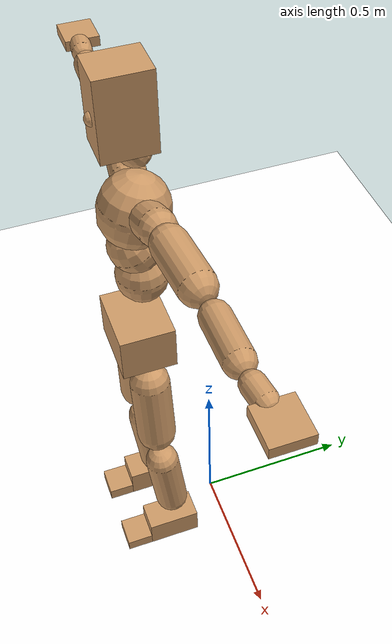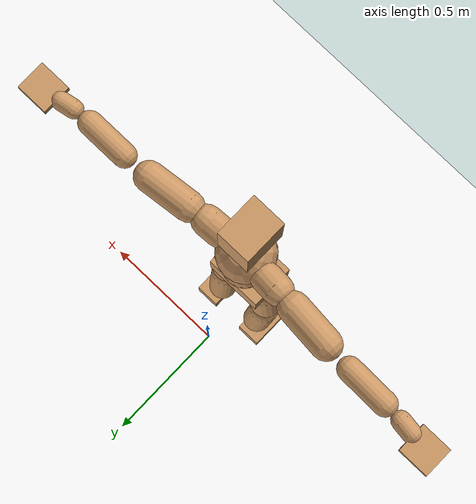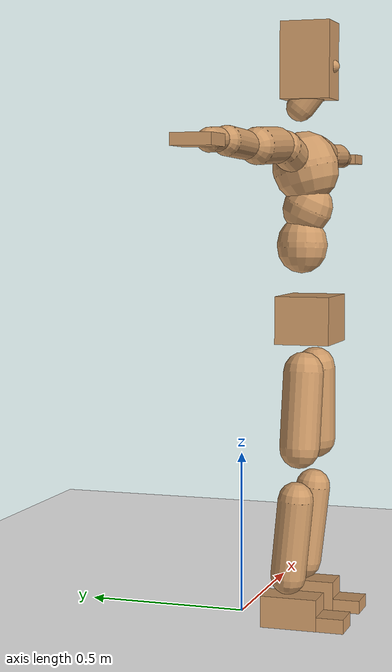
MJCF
<mujoco model="humanoid">
  <option integrator="implicitfast" />

  <visual>
    <global offwidth="1280" offheight="960" />
    <headlight active="1" ambient="0.34 0.34 0.34" diffuse="0.5 0.5 0.5" />
  </visual>

  <default>
    <joint damping="2" stiffness="2" armature="0.01" limited="true" solimplimit="0 .99 .01" />
    <geom condim="1" friction="0.7 0.005 0.0001" solimp=".99 .99 .003" solref="0.015 1" margin="0.001" rgba="0.8 0.6 .4 1" />
    <default class="smplcontact">
      <geom condim="3" friction="1. 0.005 0.0001" solref="0.015 1" solimp="0.98 0.98 0.001" priority="1" />
    </default>
    <default class="stiff_medium">
      <joint stiffness="10" />
    </default>
    <default class="stiff_medium_higher">
      <joint stiffness="50" />
    </default>
    <default class="stiff_high">
      <joint stiffness="100" />
    </default>
  </default>

  <asset>
    <texture type="skybox" builtin="gradient" rgb1="0.99 0.99 0.99" rgb2="0.608 0.828 0.892" width="100" />
    <texture builtin="flat" height="1278" mark="cross" markrgb="1 1 1" name="texgeom" random="0.01" rgb1="0.8 0.6 0.4" rgb2="0.8 0.6 0.4" type="cube" width="127" />
    <texture name="texplane" type="2d" builtin="checker" markrgb="1 1 1" rgb1="0.756 0.772 0.76" rgb2="0.6 0.6 0.6" width="100" height="100" />
    <material name="MatPlane" reflectance="0.5" texture="texplane" texrepeat="1 1" texuniform="true" />
    <material name="geom" texture="texgeom" texuniform="true" />
  </asset>

  <worldbody>
    <light name="tracking_light" pos="0 0 7" dir="0 0 -1" directional="true" cutoff="100" exponent="1" diffuse="1 1 1" specular="0.1 0.1 0.1" mode="trackcom" />
    <camera name="back" pos="0 3 2.4" xyaxes="-1 0 0 0 -1 2" mode="trackcom" />
    <camera name="side" pos="-3 0 2.4" xyaxes="0 -1 0 1 0 2" mode="trackcom" />
    <camera name="front_side" pos="-2.8 -2.8 0.8" xyaxes="0.5 -0.5 0 0.1 0.1 1" mode="trackcom" />
    <geom condim="3" name="floor" pos="0 0 0" rgba="1 1 1 1" size="100 100 .2" type="plane" material="MatPlane" />
    <body name="Pelvis" pos="-0.0018 -0.2233 0.9367" euler="90 0 0">
      <site name="Pelvis" size="0.01" />
      <freejoint name="Pelvis" />
      <geom type="box" pos="-0.0000 -0.0121 -0.0055" size="0.1069 0.0722 0.083" quat="1.0000 0.0000 0.0000 0.0000" density="3165.830099" name="Pelvis" />
      <body name="L_Hip" pos="0.0695 -0.0914 -0.0068">
        <joint name="L_Hip_x" type="hinge" pos="0 0 0" axis="1 0 0" stiffness="10.0" range="-160.0 22.92" class="stiff_medium" damping="15.0" armature="0.010000000000000002"/>
        <joint name="L_Hip_y" type="hinge" pos="0 0 0" axis="0 1 0" stiffness="10.0" range="-70.0 70.0" class="stiff_medium" damping="10.000000000000002" armature="0.010000000000000007"/>
        <joint name="L_Hip_z" type="hinge" pos="0 0 0" axis="0 0 1" stiffness="10.0" range="-28.65 90.0" class="stiff_medium" damping="9.999999999999998" armature="0.009999999999999998"/>
        <geom type="capsule" density="2040.816327" fromto="0.0069 -0.075 -0.0009 0.0274 -0.3002 -0.0036" size="0.0615" name="L_Hip" />
        <body name="L_Knee" pos="0.0343 -0.3752 -0.0045">
          <joint name="L_Knee_x" type="hinge" pos="0 0 0" axis="1 0 0" range="-5.16 171.89" damping="8.000000000000004" armature="0.010000000000000009" stiffness="2.0"/>
          <joint name="L_Knee_y" type="hinge" pos="0 0 0" axis="0 1 0" range="-4.58 6.88" damping="8.000000000000002" armature="0.010000000000000005" stiffness="2.0"/>
          <joint name="L_Knee_z" type="hinge" pos="0 0 0" axis="0 0 1" range="-6.88 4.58" damping="7.999999999999998" armature="0.009999999999999995" stiffness="2.0"/>
          <geom type="capsule" density="1234.567901" fromto="-0.0027 -0.0796 -0.0087 -0.0109 -0.3184 -0.035" size="0.0541" name="L_Knee" />
          <body name="L_Ankle" pos="-0.0136 -0.398 -0.0437">
            <joint name="L_Ankle_x" type="hinge" pos="0 0 0" axis="1 0 0" range="-45.84 45.84" class="stiff_medium" damping="6.000000000000025" armature="0.010000000000000085" stiffness="10.0"/>
            <joint name="L_Ankle_y" type="hinge" pos="0 0 0" axis="0 1 0" range="-74.48 22.92" class="stiff_medium" damping="3.0" armature="0.010000000000000002" stiffness="10.0"/>
            <joint name="L_Ankle_z" type="hinge" pos="0 0 0" axis="0 0 1" range="-4.58 4.58" class="stiff_medium" damping="5.999999999999938" armature="0.009999999999999796" stiffness="10.0"/>
            <geom type="box" pos="0.0233 -0.0239 0.0242" size="0.0483 0.0464 0.085" quat="1.0000 0.0000 0.0000 0.0000" density="449.071558" name="L_Ankle" class="smplcontact" />
            <body name="L_Toe" pos="0.0264 -0.0558 0.1193">
              <joint name="L_Toe_x" type="hinge" pos="0 0 0" axis="1 0 0" range="-91.67 22.92" armature="0.009999999999998375" damping="1.9999999999998375" stiffness="2.0"/>
              <joint name="L_Toe_y" type="hinge" pos="0 0 0" axis="0 1 0" range="-4.58 4.58" armature="0.009999999999999976" damping="1.9999999999999976" stiffness="2.0"/>
              <joint name="L_Toe_z" type="hinge" pos="0 0 0" axis="0 0 1" range="-4.58 4.58" armature="0.009999999999998234" damping="1.9999999999998235" stiffness="2.0"/>
              <geom type="box" pos="-0.003 0.0055 0.0248" size="0.0478 0.02 0.0496" quat="1.0000 0.0000 0.0000 0.0000" density="423.206892" name="L_Toe" class="smplcontact" />
            </body>
          </body>
        </body>
      </body>
      <body name="R_Hip" pos="-0.0677 -0.0905 -0.0043">
        <joint name="R_Hip_x" type="hinge" pos="0 0 0" axis="1 0 0" stiffness="10.0" range="-160.0 22.92" class="stiff_medium" damping="15.0" armature="0.010000000000000002"/>
        <joint name="R_Hip_y" type="hinge" pos="0 0 0" axis="0 1 0" stiffness="10.0" range="-70.0 70.0" class="stiff_medium" damping="10.000000000000002" armature="0.010000000000000007"/>
        <joint name="R_Hip_z" type="hinge" pos="0 0 0" axis="0 0 1" stiffness="10.0" range="-90.0 28.65" class="stiff_medium" damping="9.999999999999998" armature="0.009999999999999998"/>
        <geom type="capsule" density="2040.816327" fromto="-0.0077 -0.0765 -0.0018 -0.0306 -0.3061 -0.0071" size="0.0606" name="R_Hip" />
        <body name="R_Knee" pos="-0.0383 -0.3826 -0.0089">
          <joint name="R_Knee_x" type="hinge" pos="0 0 0" axis="1 0 0" range="-5.16 171.89" damping="8.000000000000004" armature="0.010000000000000009" stiffness="2.0"/>
          <joint name="R_Knee_y" type="hinge" pos="0 0 0" axis="0 1 0" range="-6.88 4.58" damping="8.000000000000002" armature="0.010000000000000005" stiffness="2.0"/>
          <joint name="R_Knee_z" type="hinge" pos="0 0 0" axis="0 0 1" range="-4.58 6.88" damping="7.999999999999998" armature="0.009999999999999995" stiffness="2.0"/>
          <geom type="capsule" density="1234.567901" fromto="0.0032 -0.0797 -0.0085 0.0126 -0.3187 -0.0338" size="0.0541" name="R_Knee" />
          <body name="R_Ankle" pos="0.0158 -0.3984 -0.0423">
            <joint name="R_Ankle_x" type="hinge" pos="0 0 0" axis="1 0 0" range="-45.84 45.84" class="stiff_medium" damping="6.000000000000025" armature="0.010000000000000085" stiffness="10.0"/>
            <joint name="R_Ankle_y" type="hinge" pos="0 0 0" axis="0 1 0" range="-22.92 74.48" class="stiff_medium" damping="3.0" armature="0.010000000000000002" stiffness="10.0"/>
            <joint name="R_Ankle_z" type="hinge" pos="0 0 0" axis="0 0 1" range="-4.58 4.58" class="stiff_medium" damping="5.999999999999938" armature="0.009999999999999796" stiffness="10.0"/>
            <geom type="box" pos="-0.0212 -0.0174 0.0256" size="0.0483 0.0478 0.0865" quat="1.0000 0.0000 0.0000 0.0000" density="434.700981" name="R_Ankle" class="smplcontact" />
            <body name="R_Toe" pos="-0.0254 -0.0481 0.1233">
              <joint name="R_Toe_x" type="hinge" pos="0 0 0" axis="1 0 0" range="-91.67 22.92" armature="0.009999999999998375" damping="1.9999999999998375" stiffness="2.0"/>
              <joint name="R_Toe_y" type="hinge" pos="0 0 0" axis="0 1 0" range="-4.58 4.58" armature="0.009999999999999976" damping="1.9999999999999976" stiffness="2.0"/>
              <joint name="R_Toe_z" type="hinge" pos="0 0 0" axis="0 0 1" range="-4.58 4.58" armature="0.009999999999998234" damping="1.9999999999998235" stiffness="2.0"/>
              <geom type="box" pos="0.0042 0.0045 0.0227" size="0.0479 0.0216 0.0493" quat="1.0000 0.0000 0.0000 0.0000" density="407.384095" name="R_Toe" class="smplcontact" />
            </body>
          </body>
        </body>
      </body>
      <body name="Torso" pos="-0.003 0.1308 -0.03204">
        <joint name="Torso_x" type="hinge" pos="0 0 0" axis="1 0 0" range="-25.78 57.3" class="stiff_medium" damping="18.677640483112885" armature="0.013257802659777503" stiffness="11.69472340909091"/>
        <joint name="Torso_y" type="hinge" pos="0 0 0" axis="0 1 0" range="-57.3 57.3" class="stiff_high" damping="21.694237838291862" armature="0.009993785849278099" stiffness="117.73315"/>
        <joint name="Torso_z" type="hinge" pos="0 0 0" axis="0 0 1" range="-34.38 34.38" class="stiff_high" damping="24.222757337160637" armature="0.012215127832808582" stiffness="120.0851069767442"/>
        <geom type="capsule" density="2040.816327" fromto="0.003 0.07296 0.0006 0.0036 0.08916 0.00072" size="0.0769" name="Torso" />
        <body name="Spine" pos="0.0066 0.16224 0.00132">
          <joint name="Spine_x" type="hinge" pos="0 0 0" axis="1 0 0" stiffness="11.510355454545456" range="-25.78 57.3" class="stiff_medium" damping="17.96437678078733" armature="0.012461004620154117"/>
          <joint name="Spine_y" type="hinge" pos="0 0 0" axis="0 1 0" stiffness="11.582415909090908" range="-57.3 57.3" class="stiff_high" damping="8.605196081191497" armature="0.009989469189890816"/>
          <joint name="Spine_z" type="hinge" pos="0 0 0" axis="0 0 1" stiffness="22.749950000000002" range="-34.38 34.38" class="stiff_high" damping="13.529771738987945" armature="0.011175526595120529"/>
          <geom type="capsule" density="2040.816327" fromto="0.00084 0.02856 0.01368 0.00096 0.03492 0.0168" size="0.0755" name="Spine" />
          <body name="Chest" pos="0.0018 0.06348 0.03048">
            <joint name="Chest_x" type="hinge" pos="0 0 0" axis="1 0 0" stiffness="11.11315909090909" range="-25.78 57.3" class="stiff_medium" damping="17.325710969510986" armature="0.012004997684615373"/>
            <joint name="Chest_y" type="hinge" pos="0 0 0" axis="0 1 0" stiffness="10.695330930232558" range="-57.3 57.3" class="stiff_high" damping="8.281971398403202" armature="0.01002058905005483"/>
            <joint name="Chest_z" type="hinge" pos="0 0 0" axis="0 0 1" stiffness="22.37315363636364" range="-34.38 34.38" class="stiff_high" damping="13.165722005903188" armature="0.010760430829163474"/>
            <geom type="capsule" density="2040.816327" fromto="-0.00108 0.08184 -0.02076 -0.0012 0.09996 -0.02544" size="0.1002" name="Chest" />
            <body name="Neck" pos="-0.00336 0.25668 -0.05148">
              <joint name="Neck_x" type="hinge" pos="0 0 0" axis="1 0 0" range="-28.65 57.3" class="stiff_medium_higher" damping="10.15124837290633" armature="0.010062474925402192" stiffness="51.20402500000001"/>
              <joint name="Neck_y" type="hinge" pos="0 0 0" axis="0 1 0" range="-40.11 40.11" class="stiff_medium_higher" damping="10.179132196448924" armature="0.010170205863853494" stiffness="50.94033181818182"/>
              <joint name="Neck_z" type="hinge" pos="0 0 0" axis="0 0 1" range="-40.11 40.11" class="stiff_medium_higher" damping="10.06821274595959" armature="0.01004356484394618" stiffness="50.464605681818185"/>
              <geom type="capsule" density="1000" fromto="0.0012 0.0156 0.01236 0.00492 0.0624 0.04932" size="0.0436" name="Neck" />
              <body name="Head" pos="0.0052 0.065 0.0513">
                <joint name="Head_x" type="hinge" pos="0 0 0" axis="1 0 0" range="-28.65 57.3" class="stiff_medium_higher" damping="1.9999999999999996" armature="0.009999999999999995" stiffness="50.0"/>
                <joint name="Head_y" type="hinge" pos="0 0 0" axis="0 1 0" range="-40.11 40.11" class="stiff_medium_higher" damping="2.0" armature="0.010000000000000002" stiffness="50.0"/>
                <joint name="Head_z" type="hinge" pos="0 0 0" axis="0 0 1" range="-40.11 40.11" class="stiff_medium_higher" damping="1.999999999999997" armature="0.009999999999999969" stiffness="50.0"/>
                <geom type="box" pos="-0.0042 0.0876 -0.0116" size="0.0606 0.1154 0.076" quat="1.0000 0.0000 0.0000 0.0000" density="1018.069894" name="Head" />
                <geom type="capsule" name="nose" size="0.02 0.01" pos="0 0.07 0.05" quat="1 0 0 0" mass="0" contype="0" conaffinity="0" />
              </body>
            </body>
            <body name="L_Thorax" pos="0.0788 0.1217 -0.0341">
              <joint name="L_Thorax_x" type="hinge" pos="0 0 0" axis="1 0 0" range="-10.89 4.58" class="stiff_medium_higher" damping="19.999999999999922" armature="0.009999999999999922" stiffness="50.0"/>
              <joint name="L_Thorax_y" type="hinge" pos="0 0 0" axis="0 1 0" range="-28.65 17.19" class="stiff_medium_higher" damping="20.000000000000004" armature="0.010000000000000005" stiffness="50.0"/>
              <joint name="L_Thorax_z" type="hinge" pos="0 0 0" axis="0 0 1" range="-31.51 40.11" class="stiff_medium_higher" damping="20.0" armature="0.010000000000000002" stiffness="50.0"/>
              <geom type="capsule" density="1000" fromto="0.0182 0.0061 -0.0018 0.0728 0.0244 -0.0071" size="0.0521" name="L_Thorax" />
              <body name="L_Shoulder" pos="0.091 0.0305 -0.0089">
                <joint name="L_Shoulder_x" type="hinge" pos="0 0 0" axis="1 0 0" range="-97.4 97.4" class="stiff_medium" damping="6.000000000000021" armature="0.010000000000000071" stiffness="10.0"/>
                <joint name="L_Shoulder_y" type="hinge" pos="0 0 0" axis="0 1 0" range="-108.86 80.21" class="stiff_medium" damping="6.000000000000002" armature="0.010000000000000005" stiffness="10.0"/>
                <joint name="L_Shoulder_z" type="hinge" pos="0 0 0" axis="0 0 1" range="-97.4 85.94" class="stiff_medium" damping="6.000000000000002" armature="0.010000000000000007" stiffness="10.0"/>
                <geom type="capsule" density="1000" fromto="0.0519 -0.0026 -0.0055 0.2077 -0.0102 -0.022" size="0.0517" name="L_Shoulder" />
                <body name="L_Elbow" pos="0.2596 -0.0128 -0.0275">
                  <joint name="L_Elbow_x" type="hinge" pos="0 0 0" axis="1 0 0" range="-17.19 4.58" damping="5.000000000000017" armature="0.01000000000000007" stiffness="2.0"/>
                  <joint name="L_Elbow_y" type="hinge" pos="0 0 0" axis="0 1 0" range="-180.0 17.19" damping="5.000000000000004" armature="0.010000000000000021" stiffness="2.0"/>
                  <joint name="L_Elbow_z" type="hinge" pos="0 0 0" axis="0 0 1" range="-100.84 4.58" damping="5.0000000000000036" armature="0.010000000000000014" stiffness="2.0"/>
                  <geom type="capsule" density="1000" fromto="0.0498 0.0018 -0.0002 0.1994 0.0072 -0.0009" size="0.0405" name="L_Elbow" />
                  <body name="L_Wrist" pos="0.2492 0.009 -0.0012">
                    <joint name="L_Wrist_x" type="hinge" pos="0 0 0" axis="1 0 0" range="-180.0 22.92" armature="0.009999999999999214" damping="1.9999999999999214" stiffness="2.0"/>
                    <joint name="L_Wrist_y" type="hinge" pos="0 0 0" axis="0 1 0" range="-17.19 17.19" armature="0.010000000000000103" damping="2.00000000000001" stiffness="2.0"/>
                    <joint name="L_Wrist_z" type="hinge" pos="0 0 0" axis="0 0 1" range="-22.92 22.92" armature="0.009999999999999903" damping="1.9999999999999902" stiffness="2.0"/>
                    <geom type="capsule" density="1000" fromto="0.0168 -0.0016 -0.003 0.0672 -0.0065 -0.012" size="0.0318" name="L_Wrist" class="smplcontact" />
                    <body name="L_Hand" pos="0.084 -0.0082 -0.0149">
                      <joint name="L_Hand_x" type="hinge" pos="0 0 0" axis="1 0 0" range="-17.19 17.19" armature="0.009999999999999964" damping="1.9999999999999962" stiffness="2.0"/>
                      <joint name="L_Hand_y" type="hinge" pos="0 0 0" axis="0 1 0" range="-51.57 51.57" armature="0.00999999999999962" damping="1.999999999999962" stiffness="2.0"/>
                      <joint name="L_Hand_z" type="hinge" pos="0 0 0" axis="0 0 1" range="-91.67 91.67" armature="0.009999999999999756" damping="1.9999999999999756" stiffness="2.0"/>
                      <geom type="box" pos="0.0493 0.001 -0.0058" size="0.0585 0.0158 0.0538" quat="1.0000 0.0000 0.0000 0.0000" density="400.552564" name="L_Hand" class="smplcontact" />
                    </body>
                  </body>
                </body>
              </body>
            </body>
            <body name="R_Thorax" pos="-0.0818 0.1188 -0.0386">
              <joint name="R_Thorax_x" type="hinge" pos="0 0 0" axis="1 0 0" range="-10.89 4.58" class="stiff_medium_higher" damping="19.999999999999922" armature="0.009999999999999922" stiffness="50.0"/>
              <joint name="R_Thorax_y" type="hinge" pos="0 0 0" axis="0 1 0" range="-17.19 28.65" class="stiff_medium_higher" damping="20.000000000000004" armature="0.010000000000000005" stiffness="50.0"/>
              <joint name="R_Thorax_z" type="hinge" pos="0 0 0" axis="0 0 1" range="-40.11 31.51" class="stiff_medium_higher" damping="20.0" armature="0.010000000000000002" stiffness="50.0"/>
              <geom type="capsule" density="1000" fromto="-0.0192 0.0065 -0.0018 -0.0768 0.026 -0.0073" size="0.0511" name="R_Thorax" />
              <body name="R_Shoulder" pos="-0.096 0.0326 -0.0091">
                <joint name="R_Shoulder_x" type="hinge" pos="0 0 0" axis="1 0 0" range="-97.4 97.4" class="stiff_medium" damping="6.000000000000021" armature="0.010000000000000071" stiffness="10.0"/>
                <joint name="R_Shoulder_y" type="hinge" pos="0 0 0" axis="0 1 0" range="-80.21 108.86" class="stiff_medium" damping="6.000000000000002" armature="0.010000000000000005" stiffness="10.0"/>
                <joint name="R_Shoulder_z" type="hinge" pos="0 0 0" axis="0 0 1" range="-85.94 97.4" class="stiff_medium" damping="6.000000000000002" armature="0.010000000000000007" stiffness="10.0"/>
                <geom type="capsule" density="1000" fromto="-0.0507 -0.0027 -0.0043 -0.203 -0.0107 -0.0171" size="0.0531" name="R_Shoulder" />
                <body name="R_Elbow" pos="-0.2537 -0.0133 -0.0214">
                  <joint name="R_Elbow_x" type="hinge" pos="0 0 0" axis="1 0 0" range="-17.19 4.58" damping="5.000000000000017" armature="0.01000000000000007" stiffness="2.0"/>
                  <joint name="R_Elbow_y" type="hinge" pos="0 0 0" axis="0 1 0" range="-17.19 180.0" damping="5.000000000000004" armature="0.010000000000000021" stiffness="2.0"/>
                  <joint name="R_Elbow_z" type="hinge" pos="0 0 0" axis="0 0 1" range="-4.58 100.84" damping="5.0000000000000036" armature="0.010000000000000014" stiffness="2.0"/>
                  <geom type="capsule" density="1000" fromto="-0.0511 0.0016 -0.0011 -0.2042 0.0062 -0.0044" size="0.0408" name="R_Elbow" />
                  <body name="R_Wrist" pos="-0.2553 0.0078 -0.0056">
                    <joint name="R_Wrist_x" type="hinge" pos="0 0 0" axis="1 0 0" range="-180.0 22.92" armature="0.009999999999999214" damping="1.9999999999999214" stiffness="2.0"/>
                    <joint name="R_Wrist_y" type="hinge" pos="0 0 0" axis="0 1 0" range="-17.19 17.19" armature="0.010000000000000103" damping="2.00000000000001" stiffness="2.0"/>
                    <joint name="R_Wrist_z" type="hinge" pos="0 0 0" axis="0 0 1" range="-22.92 22.92" armature="0.009999999999999903" damping="1.9999999999999902" stiffness="2.0"/>
                    <geom type="capsule" density="1000" fromto="-0.0169 -0.0012 -0.0021 -0.0677 -0.0049 -0.0083" size="0.0326" name="R_Wrist" class="smplcontact" />
                    <body name="R_Hand" pos="-0.0846 -0.0061 -0.0103">
                      <joint name="R_Hand_x" type="hinge" pos="0 0 0" axis="1 0 0" range="-17.19 17.19" armature="0.009999999999999964" damping="1.9999999999999962" stiffness="2.0"/>
                      <joint name="R_Hand_y" type="hinge" pos="0 0 0" axis="0 1 0" range="-51.57 51.57" armature="0.00999999999999962" damping="1.999999999999962" stiffness="2.0"/>
                      <joint name="R_Hand_z" type="hinge" pos="0 0 0" axis="0 0 1" range="-91.67 91.67" armature="0.009999999999999756" damping="1.9999999999999756" stiffness="2.0"/>
                      <geom type="box" pos="-0.0462 -0.0009 -0.0079" size="0.0569 0.0164 0.0546" quat="1.0000 0.0000 0.0000 0.0000" density="403.679611" name="R_Hand" class="smplcontact" />
                    </body>
                  </body>
                </body>
              </body>
            </body>
          </body>
        </body>
      </body>
    </body>
  </worldbody>
  <actuator>
    <general name="L_Hip_x" joint="L_Hip_x" biastype="affine" gainprm="287.33006409732246" biasprm="-215.3247604770444 -180.0 -2.0" ctrllimited="true" ctrlrange="-1 1" forcerange="-360.0 360.0" />
    <general name="L_Hip_y" joint="L_Hip_y" biastype="affine" gainprm="219.9114857512855" biasprm="0.0 -180.0 -2.0000000000000004" ctrllimited="true" ctrlrange="-1 1" forcerange="-360.0 360.0" />
    <general name="L_Hip_z" joint="L_Hip_z" biastype="affine" gainprm="186.3749841742145" biasprm="96.3683546488669 -180.0 -1.9999999999999998" ctrllimited="true" ctrlrange="-1 1" forcerange="-360.0 360.0" />
    <general name="L_Knee_x" joint="L_Knee_x" biastype="affine" gainprm="278.10948965903646" biasprm="261.8988715665131 -180.0 -2.000000000000001" ctrllimited="true" ctrlrange="-1 1" forcerange="-360.0 360.0" />
    <general name="L_Knee_y" joint="L_Knee_y" biastype="affine" gainprm="18.001325905069514" biasprm="3.612831551628262 -180.0 -2.0000000000000004" ctrllimited="true" ctrlrange="-1 1" forcerange="-360.0 360.0" />
    <general name="L_Knee_z" joint="L_Knee_z" biastype="affine" gainprm="18.001325905069514" biasprm="-3.612831551628262 -180.0 -1.9999999999999996" ctrllimited="true" ctrlrange="-1 1" forcerange="-360.0 360.0" />
    <general name="L_Ankle_x" joint="L_Ankle_x" biastype="affine" gainprm="72.00530362027807" biasprm="0.0 -90.0 -2.0000000000000084" ctrllimited="true" ctrlrange="-1 1" forcerange="-180.0 180.0" />
    <general name="L_Ankle_y" joint="L_Ankle_y" biastype="affine" gainprm="76.49778111491148" biasprm="-40.49512930477244 -90.0 -2.0" ctrllimited="true" ctrlrange="-1 1" forcerange="-180.0 180.0" />
    <general name="L_Ankle_z" joint="L_Ankle_z" biastype="affine" gainprm="7.1942471767206255" biasprm="0.0 -90.0 -1.9999999999999793" ctrllimited="true" ctrlrange="-1 1" forcerange="-180.0 180.0" />
    <general name="L_Toe_x" joint="L_Toe_x" biastype="affine" gainprm="71.99902043497087" biasprm="-43.19689898685965 -72.0 -0.799999999999935" ctrllimited="true" ctrlrange="-1 1" forcerange="-144.0 144.0" />
    <general name="L_Toe_y" joint="L_Toe_y" biastype="affine" gainprm="5.755397741376501" biasprm="0.0 -72.0 -0.799999999999999" ctrllimited="true" ctrlrange="-1 1" forcerange="-144.0 144.0" />
    <general name="L_Toe_z" joint="L_Toe_z" biastype="affine" gainprm="5.755397741376501" biasprm="0.0 -72.0 -0.7999999999999294" ctrllimited="true" ctrlrange="-1 1" forcerange="-144.0 144.0" />
    <general name="R_Hip_x" joint="R_Hip_x" biastype="affine" gainprm="287.33006409732246" biasprm="-215.3247604770444 -180.0 -2.0" ctrllimited="true" ctrlrange="-1 1" forcerange="-360.0 360.0" />
    <general name="R_Hip_y" joint="R_Hip_y" biastype="affine" gainprm="219.9114857512855" biasprm="0.0 -180.0 -2.0000000000000004" ctrllimited="true" ctrlrange="-1 1" forcerange="-360.0 360.0" />
    <general name="R_Hip_z" joint="R_Hip_z" biastype="affine" gainprm="186.3749841742145" biasprm="-96.3683546488669 -180.0 -1.9999999999999998" ctrllimited="true" ctrlrange="-1 1" forcerange="-360.0 360.0" />
    <general name="R_Knee_x" joint="R_Knee_x" biastype="affine" gainprm="278.10948965903646" biasprm="261.8988715665131 -180.0 -2.000000000000001" ctrllimited="true" ctrlrange="-1 1" forcerange="-360.0 360.0" />
    <general name="R_Knee_y" joint="R_Knee_y" biastype="affine" gainprm="18.001325905069514" biasprm="-3.612831551628262 -180.0 -2.0000000000000004" ctrllimited="true" ctrlrange="-1 1" forcerange="-360.0 360.0" />
    <general name="R_Knee_z" joint="R_Knee_z" biastype="affine" gainprm="18.001325905069514" biasprm="3.612831551628262 -180.0 -1.9999999999999996" ctrllimited="true" ctrlrange="-1 1" forcerange="-360.0 360.0" />
    <general name="R_Ankle_x" joint="R_Ankle_x" biastype="affine" gainprm="72.00530362027807" biasprm="0.0 -90.0 -2.0000000000000084" ctrllimited="true" ctrlrange="-1 1" forcerange="-180.0 180.0" />
    <general name="R_Ankle_y" joint="R_Ankle_y" biastype="affine" gainprm="76.49778111491148" biasprm="40.49512930477244 -90.0 -2.0" ctrllimited="true" ctrlrange="-1 1" forcerange="-180.0 180.0" />
    <general name="R_Ankle_z" joint="R_Ankle_z" biastype="affine" gainprm="7.1942471767206255" biasprm="0.0 -90.0 -1.9999999999999793" ctrllimited="true" ctrlrange="-1 1" forcerange="-180.0 180.0" />
    <general name="R_Toe_x" joint="R_Toe_x" biastype="affine" gainprm="71.99902043497087" biasprm="-43.19689898685965 -72.0 -0.799999999999935" ctrllimited="true" ctrlrange="-1 1" forcerange="-144.0 144.0" />
    <general name="R_Toe_y" joint="R_Toe_y" biastype="affine" gainprm="5.755397741376501" biasprm="0.0 -72.0 -0.799999999999999" ctrllimited="true" ctrlrange="-1 1" forcerange="-144.0 144.0" />
    <general name="R_Toe_z" joint="R_Toe_z" biastype="affine" gainprm="5.755397741376501" biasprm="0.0 -72.0 -0.7999999999999294" ctrllimited="true" ctrlrange="-1 1" forcerange="-144.0 144.0" />
    <general name="Torso_x" joint="Torso_x" biastype="affine" gainprm="203.4909298557521" biasprm="77.2031067531693 -280.67336181818183 -4.980704128830102" ctrllimited="true" ctrlrange="-1 1" forcerange="-421.0100427272728 421.0100427272728" />
    <general name="Torso_y" joint="Torso_y" biastype="affine" gainprm="282.58037373072466" biasprm="0.0 -282.55956 -4.338847567658372" ctrllimited="true" ctrlrange="-1 1" forcerange="-423.83934 423.83934" />
    <general name="Torso_z" joint="Torso_z" biastype="affine" gainprm="172.93529176268075" biasprm="0.0 -288.20425674418607 -4.844551467432128" ctrllimited="true" ctrlrange="-1 1" forcerange="-432.3063851162791 432.3063851162791" />
    <general name="Spine_x" joint="Spine_x" biastype="affine" gainprm="200.28288421040634" biasprm="75.98599555021673 -276.24853090909096 -4.790500474876621" ctrllimited="true" ctrlrange="-1 1" forcerange="-414.3727963636364 414.3727963636364" />
    <general name="Spine_y" joint="Spine_y" biastype="affine" gainprm="277.99845806347656" biasprm="0.0 -277.9779818181818 -4.302598040595749" ctrllimited="true" ctrlrange="-1 1" forcerange="-416.9669727272727 416.9669727272727" />
    <general name="Spine_z" joint="Spine_z" biastype="affine" gainprm="163.81170570961453" biasprm="0.0 -272.99940000000004 -4.509923912995982" ctrllimited="true" ctrlrange="-1 1" forcerange="-409.4991 409.4991" />
    <general name="Chest_x" joint="Chest_x" biastype="affine" gainprm="193.37157433634317" biasprm="73.36389050411093 -266.7158181818182 -4.620189591869596" ctrllimited="true" ctrlrange="-1 1" forcerange="-400.07372727272724 400.07372727272724" />
    <general name="Chest_y" joint="Chest_y" biastype="affine" gainprm="256.70685031691545" biasprm="0.0 -256.6879423255814 -4.140985699201601" ctrllimited="true" ctrlrange="-1 1" forcerange="-385.0319134883721 385.0319134883721" />
    <general name="Chest_z" joint="Chest_z" biastype="affine" gainprm="161.0985720529492" biasprm="0.0 -268.4778436363637 -4.388574001967729" ctrllimited="true" ctrlrange="-1 1" forcerange="-402.7167654545455 402.7167654545455" />
    <general name="Neck_x" joint="Neck_x" biastype="affine" gainprm="27.652210250289816" biasprm="9.217403416763272 -36.866898000000006 -0.8120998698325064" ctrllimited="true" ctrlrange="-1 1" forcerange="-73.73379600000001 73.73379600000001" />
    <general name="Neck_y" joint="Neck_y" biastype="affine" gainprm="25.67581841360125" biasprm="0.0 -36.67703890909091 -0.8143305757159139" ctrllimited="true" ctrlrange="-1 1" forcerange="-73.35407781818182 73.35407781818182" />
    <general name="Neck_z" joint="Neck_z" biastype="affine" gainprm="25.436034779378492" biasprm="0.0 -36.33451609090909 -0.8054570196767673" ctrllimited="true" ctrlrange="-1 1" forcerange="-72.66903218181818 72.66903218181818" />
    <general name="Head_x" joint="Head_x" biastype="affine" gainprm="18.001325905069514" biasprm="6.000441968356505 -24.0 -0.7999999999999998" ctrllimited="true" ctrlrange="-1 1" forcerange="-48.0 48.0" />
    <general name="Head_y" joint="Head_y" biastype="affine" gainprm="16.801237511398213" biasprm="0.0 -24.0 -0.8" ctrllimited="true" ctrlrange="-1 1" forcerange="-48.0 48.0" />
    <general name="Head_z" joint="Head_z" biastype="affine" gainprm="16.801237511398213" biasprm="0.0 -24.0 -0.7999999999999988" ctrllimited="true" ctrlrange="-1 1" forcerange="-48.0 48.0" />
    <general name="L_Thorax_x" joint="L_Thorax_x" biastype="affine" gainprm="16.200146117011364" biasprm="-6.6078165480505335 -120.0 -1.5999999999999939" ctrllimited="true" ctrlrange="-1 1" forcerange="-240.0 240.0" />
    <general name="L_Thorax_y" joint="L_Thorax_y" biastype="affine" gainprm="48.00353574685204" biasprm="-12.00088393671301 -120.0 -1.6000000000000005" ctrllimited="true" ctrlrange="-1 1" forcerange="-240.0 240.0" />
    <general name="L_Thorax_z" joint="L_Thorax_z" biastype="affine" gainprm="75.00028861670033" biasprm="9.00589894029074 -120.0 -1.6" ctrllimited="true" ctrlrange="-1 1" forcerange="-240.0 240.0" />
    <general name="L_Shoulder_x" joint="L_Shoulder_x" biastype="affine" gainprm="81.5976331892389" biasprm="0.0 -48.0 -1.6000000000000059" ctrllimited="true" ctrlrange="-1 1" forcerange="-96.0 96.0" />
    <general name="L_Shoulder_y" joint="L_Shoulder_y" biastype="affine" gainprm="79.19745640189629" biasprm="-12.00088393671301 -48.0 -1.6000000000000005" ctrllimited="true" ctrlrange="-1 1" forcerange="-96.0 96.0" />
    <general name="L_Shoulder_z" joint="L_Shoulder_z" biastype="affine" gainprm="76.79727961455369" biasprm="-4.800353574685214 -48.0 -1.6000000000000005" ctrllimited="true" ctrlrange="-1 1" forcerange="-96.0 96.0" />
    <general name="L_Elbow_x" joint="L_Elbow_x" biastype="affine" gainprm="13.67849441372996" biasprm="-7.923096672353461 -72.0 -0.8000000000000027" ctrllimited="true" ctrlrange="-1 1" forcerange="-144.0 144.0" />
    <general name="L_Elbow_y" joint="L_Elbow_y" biastype="affine" gainprm="123.89813107227425" biasprm="-102.29653998619085 -72.0 -0.8000000000000007" ctrllimited="true" ctrlrange="-1 1" forcerange="-144.0 144.0" />
    <general name="L_Elbow_z" joint="L_Elbow_z" biastype="affine" gainprm="66.23733950828719" biasprm="-60.4819417669107 -72.0 -0.8000000000000006" ctrllimited="true" ctrlrange="-1 1" forcerange="-144.0 144.0" />
    <general name="L_Wrist_x" joint="L_Wrist_x" biastype="affine" gainprm="21.24973270888136" biasprm="-16.449379134196157 -12.0 -0.7999999999999686" ctrllimited="true" ctrlrange="-1 1" forcerange="-24.0 24.0" />
    <general name="L_Wrist_y" joint="L_Wrist_y" biastype="affine" gainprm="3.6002651810139037" biasprm="0.0 -12.0 -0.8000000000000042" ctrllimited="true" ctrlrange="-1 1" forcerange="-24.0 24.0" />
    <general name="L_Wrist_z" joint="L_Wrist_z" biastype="affine" gainprm="4.800353574685205" biasprm="0.0 -12.0 -0.7999999999999962" ctrllimited="true" ctrlrange="-1 1" forcerange="-24.0 24.0" />
    <general name="L_Hand_x" joint="L_Hand_x" biastype="affine" gainprm="3.6002651810139037" biasprm="0.0 -12.0 -0.7999999999999985" ctrllimited="true" ctrlrange="-1 1" forcerange="-24.0 24.0" />
    <general name="L_Hand_y" joint="L_Hand_y" biastype="affine" gainprm="10.800795543041708" biasprm="0.0 -12.0 -0.7999999999999848" ctrllimited="true" ctrlrange="-1 1" forcerange="-24.0 24.0" />
    <general name="L_Hand_z" joint="L_Hand_z" biastype="affine" gainprm="19.199319903638422" biasprm="0.0 -12.0 -0.7999999999999903" ctrllimited="true" ctrlrange="-1 1" forcerange="-24.0 24.0" />
    <general name="R_Thorax_x" joint="R_Thorax_x" biastype="affine" gainprm="16.200146117011364" biasprm="-6.6078165480505335 -120.0 -1.5999999999999939" ctrllimited="true" ctrlrange="-1 1" forcerange="-240.0 240.0" />
    <general name="R_Thorax_y" joint="R_Thorax_y" biastype="affine" gainprm="48.00353574685204" biasprm="12.000883936713002 -120.0 -1.6000000000000005" ctrllimited="true" ctrlrange="-1 1" forcerange="-240.0 240.0" />
    <general name="R_Thorax_z" joint="R_Thorax_z" biastype="affine" gainprm="75.00028861670033" biasprm="-9.00589894029074 -120.0 -1.6" ctrllimited="true" ctrlrange="-1 1" forcerange="-240.0 240.0" />
    <general name="R_Shoulder_x" joint="R_Shoulder_x" biastype="affine" gainprm="81.5976331892389" biasprm="0.0 -48.0 -1.6000000000000059" ctrllimited="true" ctrlrange="-1 1" forcerange="-96.0 96.0" />
    <general name="R_Shoulder_y" joint="R_Shoulder_y" biastype="affine" gainprm="79.19745640189629" biasprm="12.00088393671301 -48.0 -1.6000000000000005" ctrllimited="true" ctrlrange="-1 1" forcerange="-96.0 96.0" />
    <general name="R_Shoulder_z" joint="R_Shoulder_z" biastype="affine" gainprm="76.79727961455369" biasprm="4.800353574685204 -48.0 -1.6000000000000005" ctrllimited="true" ctrlrange="-1 1" forcerange="-96.0 96.0" />
    <general name="R_Elbow_x" joint="R_Elbow_x" biastype="affine" gainprm="13.67849441372996" biasprm="-7.923096672353461 -72.0 -0.8000000000000027" ctrllimited="true" ctrlrange="-1 1" forcerange="-144.0 144.0" />
    <general name="R_Elbow_y" joint="R_Elbow_y" biastype="affine" gainprm="123.89813107227425" biasprm="102.29653998619085 -72.0 -0.8000000000000007" ctrllimited="true" ctrlrange="-1 1" forcerange="-144.0 144.0" />
    <general name="R_Elbow_z" joint="R_Elbow_z" biastype="affine" gainprm="66.23733950828719" biasprm="60.481941766910694 -72.0 -0.8000000000000006" ctrllimited="true" ctrlrange="-1 1" forcerange="-144.0 144.0" />
    <general name="R_Wrist_x" joint="R_Wrist_x" biastype="affine" gainprm="21.24973270888136" biasprm="-16.449379134196157 -12.0 -0.7999999999999686" ctrllimited="true" ctrlrange="-1 1" forcerange="-24.0 24.0" />
    <general name="R_Wrist_y" joint="R_Wrist_y" biastype="affine" gainprm="3.6002651810139037" biasprm="0.0 -12.0 -0.8000000000000042" ctrllimited="true" ctrlrange="-1 1" forcerange="-24.0 24.0" />
    <general name="R_Wrist_z" joint="R_Wrist_z" biastype="affine" gainprm="4.800353574685205" biasprm="0.0 -12.0 -0.7999999999999962" ctrllimited="true" ctrlrange="-1 1" forcerange="-24.0 24.0" />
    <general name="R_Hand_x" joint="R_Hand_x" biastype="affine" gainprm="3.6002651810139037" biasprm="0.0 -12.0 -0.7999999999999985" ctrllimited="true" ctrlrange="-1 1" forcerange="-24.0 24.0" />
    <general name="R_Hand_y" joint="R_Hand_y" biastype="affine" gainprm="10.800795543041708" biasprm="0.0 -12.0 -0.7999999999999848" ctrllimited="true" ctrlrange="-1 1" forcerange="-24.0 24.0" />
    <general name="R_Hand_z" joint="R_Hand_z" biastype="affine" gainprm="19.199319903638422" biasprm="0.0 -12.0 -0.7999999999999903" ctrllimited="true" ctrlrange="-1 1" forcerange="-24.0 24.0" />
  </actuator>
  <contact>
    <exclude body1="Torso" body2="Chest" />
    <exclude body1="Head" body2="Chest" />
    <exclude body1="R_Knee" body2="R_Toe" />
    <exclude body1="R_Knee" body2="L_Ankle" />
    <exclude body1="R_Knee" body2="L_Toe" />
    <exclude body1="L_Knee" body2="L_Toe" />
    <exclude body1="L_Knee" body2="R_Ankle" />
    <exclude body1="L_Knee" body2="R_Toe" />
    <exclude body1="L_Shoulder" body2="Chest" />
    <exclude body1="R_Shoulder" body2="Chest" />
  </contact>
  <sensor>
    <framelinvel name="sensor_Pelvis_framelinvel" objtype="xbody" objname="Pelvis" />
    <framelinvel name="sensor_L_Hip_framelinvel" objtype="xbody" objname="L_Hip" />
    <framelinvel name="sensor_L_Knee_framelinvel" objtype="xbody" objname="L_Knee" />
    <framelinvel name="sensor_L_Ankle_framelinvel" objtype="xbody" objname="L_Ankle" />
    <framelinvel name="sensor_L_Toe_framelinvel" objtype="xbody" objname="L_Toe" />
    <framelinvel name="sensor_R_Hip_framelinvel" objtype="xbody" objname="R_Hip" />
    <framelinvel name="sensor_R_Knee_framelinvel" objtype="xbody" objname="R_Knee" />
    <framelinvel name="sensor_R_Ankle_framelinvel" objtype="xbody" objname="R_Ankle" />
    <framelinvel name="sensor_R_Toe_framelinvel" objtype="xbody" objname="R_Toe" />
    <framelinvel name="sensor_Torso_framelinvel" objtype="xbody" objname="Torso" />
    <framelinvel name="sensor_Spine_framelinvel" objtype="xbody" objname="Spine" />
    <framelinvel name="sensor_Chest_framelinvel" objtype="xbody" objname="Chest" />
    <framelinvel name="sensor_Neck_framelinvel" objtype="xbody" objname="Neck" />
    <framelinvel name="sensor_Head_framelinvel" objtype="xbody" objname="Head" />
    <framelinvel name="sensor_L_Thorax_framelinvel" objtype="xbody" objname="L_Thorax" />
    <framelinvel name="sensor_L_Shoulder_framelinvel" objtype="xbody" objname="L_Shoulder" />
    <framelinvel name="sensor_L_Elbow_framelinvel" objtype="xbody" objname="L_Elbow" />
    <framelinvel name="sensor_L_Wrist_framelinvel" objtype="xbody" objname="L_Wrist" />
    <framelinvel name="sensor_L_Hand_framelinvel" objtype="xbody" objname="L_Hand" />
    <framelinvel name="sensor_R_Thorax_framelinvel" objtype="xbody" objname="R_Thorax" />
    <framelinvel name="sensor_R_Shoulder_framelinvel" objtype="xbody" objname="R_Shoulder" />
    <framelinvel name="sensor_R_Elbow_framelinvel" objtype="xbody" objname="R_Elbow" />
    <framelinvel name="sensor_R_Wrist_framelinvel" objtype="xbody" objname="R_Wrist" />
    <framelinvel name="sensor_R_Hand_framelinvel" objtype="xbody" objname="R_Hand" />
    <frameangvel name="sensor_Pelvis_frameangvel" objtype="xbody" objname="Pelvis" />
    <frameangvel name="sensor_L_Hip_frameangvel" objtype="xbody" objname="L_Hip" />
    <frameangvel name="sensor_L_Knee_frameangvel" objtype="xbody" objname="L_Knee" />
    <frameangvel name="sensor_L_Ankle_frameangvel" objtype="xbody" objname="L_Ankle" />
    <frameangvel name="sensor_L_Toe_frameangvel" objtype="xbody" objname="L_Toe" />
    <frameangvel name="sensor_R_Hip_frameangvel" objtype="xbody" objname="R_Hip" />
    <frameangvel name="sensor_R_Knee_frameangvel" objtype="xbody" objname="R_Knee" />
    <frameangvel name="sensor_R_Ankle_frameangvel" objtype="xbody" objname="R_Ankle" />
    <frameangvel name="sensor_R_Toe_frameangvel" objtype="xbody" objname="R_Toe" />
    <frameangvel name="sensor_Torso_frameangvel" objtype="xbody" objname="Torso" />
    <frameangvel name="sensor_Spine_frameangvel" objtype="xbody" objname="Spine" />
    <frameangvel name="sensor_Chest_frameangvel" objtype="xbody" objname="Chest" />
    <frameangvel name="sensor_Neck_frameangvel" objtype="xbody" objname="Neck" />
    <frameangvel name="sensor_Head_frameangvel" objtype="xbody" objname="Head" />
    <frameangvel name="sensor_L_Thorax_frameangvel" objtype="xbody" objname="L_Thorax" />
    <frameangvel name="sensor_L_Shoulder_frameangvel" objtype="xbody" objname="L_Shoulder" />
    <frameangvel name="sensor_L_Elbow_frameangvel" objtype="xbody" objname="L_Elbow" />
    <frameangvel name="sensor_L_Wrist_frameangvel" objtype="xbody" objname="L_Wrist" />
    <frameangvel name="sensor_L_Hand_frameangvel" objtype="xbody" objname="L_Hand" />
    <frameangvel name="sensor_R_Thorax_frameangvel" objtype="xbody" objname="R_Thorax" />
    <frameangvel name="sensor_R_Shoulder_frameangvel" objtype="xbody" objname="R_Shoulder" />
    <frameangvel name="sensor_R_Elbow_frameangvel" objtype="xbody" objname="R_Elbow" />
    <frameangvel name="sensor_R_Wrist_frameangvel" objtype="xbody" objname="R_Wrist" />
    <frameangvel name="sensor_R_Hand_frameangvel" objtype="xbody" objname="R_Hand" />
    <subtreelinvel name="Chest_subtreelinvel" body="Chest" />
    <gyro name="Pelvis_gyro" site="Pelvis" />
  </sensor>
</mujoco>
